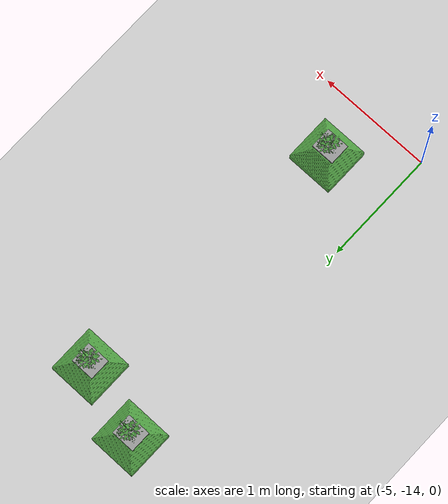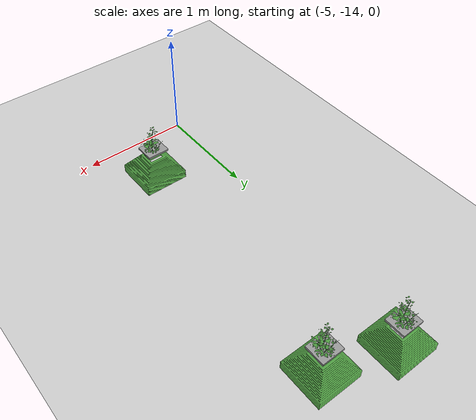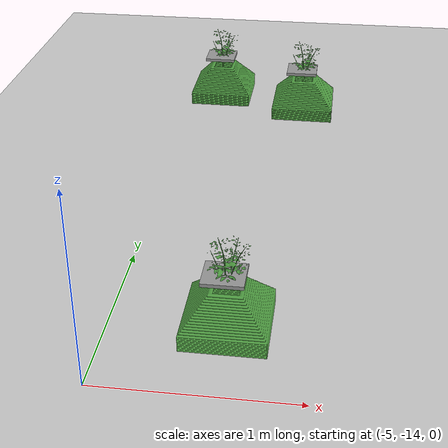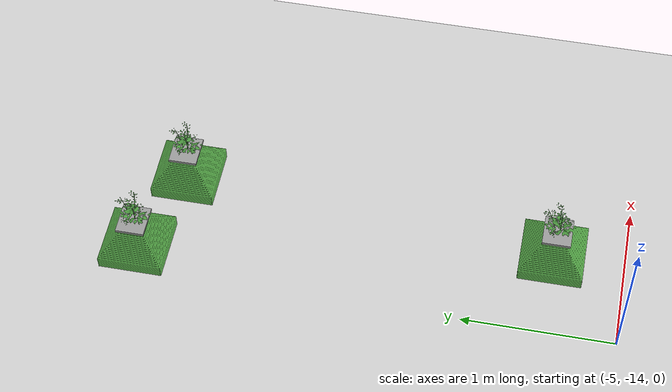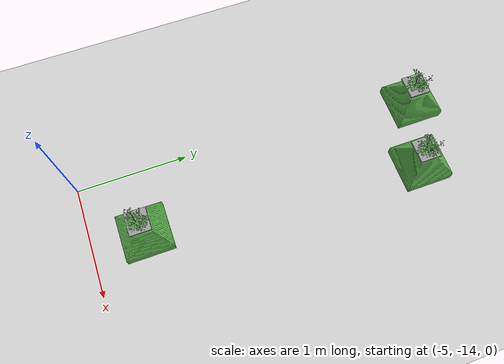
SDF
<sdf version="1.6">
 <world name="default">
  <model name="ground_plane">
   <static>1</static>
   <link name="link">
    <collision name="collision">
     <geometry><plane><normal>0 0 1</normal><size>100 100</size></plane></geometry>
     <surface><friction><ode><mu>100</mu><mu2>50</mu2></ode></friction></surface>
    </collision>
    <visual name="visual">
     <cast_shadows>0</cast_shadows>
     <geometry><plane><normal>0 0 1</normal><size>100 100</size></plane></geometry>
     <material>
      <script><uri>file://media/materials/scripts/gazebo.material</uri><name>Gazebo/Grey</name></script>
     </material>
    </visual>
   </link>
  </model>
  <model name="plant_40">
   <link name="link_0">
    <inertial>
     <mass>1</mass>
     <inertia>
      <ixx>0.0134051</ixx>
      <ixy>0</ixy>
      <ixz>0</ixz>
      <iyy>0.0134051</iyy>
      <iyz>0</iyz>
      <izz>0.0254102</izz>
     </inertia>
    </inertial>
    <gravity>0</gravity>
    <visual name="visual">
     <geometry><mesh><uri>model://square_pot/pot.stl</uri><scale>0.033 0.033 0.02</scale></mesh></geometry>
     <material>
      <lighting>1</lighting>
      <script><uri>file://media/materials/scripts/gazebo.material</uri><name>Gazebo/Grass</name></script>
      <ambient>0.3 0.3 0.3 1</ambient>
      <diffuse>0.7 0.7 0.7 1</diffuse>
      <specular>0.01 0.01 0.01 1</specular>
      <emissive>0 0 0 1</emissive>
      <shader type="vertex"><normal_map>__default__</normal_map></shader>
     </material>
    </visual>
    <collision name="collision">
     <pose>0 0 0.25 0 -0 0</pose>
     <geometry><box><size>0.4 0.4 0.4</size></box></geometry>
     <surface>
      <friction>
       <ode><mu>1</mu><mu2>1</mu2><fdir1>0 0 0</fdir1><slip1>0</slip1><slip2>0</slip2></ode>
       <torsional>
        <coefficient>1</coefficient>
        <patch_radius>0</patch_radius>
        <surface_radius>0</surface_radius>
        <use_patch_radius>1</use_patch_radius>
        <ode><slip>0</slip></ode>
       </torsional>
      </friction>
      <bounce><restitution_coefficient>0</restitution_coefficient><threshold>1e+06</threshold></bounce>
      <contact>
       <collide_without_contact>1</collide_without_contact>
       <collide_without_contact_bitmask>1</collide_without_contact_bitmask>
       <collide_bitmask>1</collide_bitmask>
       <ode>
        <soft_cfm>0</soft_cfm>
        <soft_erp>0.2</soft_erp>
        <kp>1e+13</kp>
        <kd>1</kd>
        <max_vel>0.01</max_vel>
        <min_depth>0</min_depth>
       </ode>
       <bullet>
        <split_impulse>1</split_impulse>
        <split_impulse_penetration_threshold>-0.01</split_impulse_penetration_threshold>
        <soft_cfm>0</soft_cfm>
        <soft_erp>0.2</soft_erp>
        <kp>1e+13</kp>
        <kd>1</kd>
       </bullet>
      </contact>
     </surface>
    </collision>
   </link>
   <link name="link_0_0">
    <pose>-0.011441 -0.008338 0.308474 0 -0 0</pose>
    <inertial>
     <mass>0.000736153</mass>
     <inertia>
      <ixx>2.11165e-06</ixx>
      <ixy>0</ixy>
      <ixz>0</ixz>
      <iyy>2.64382e-06</iyy>
      <iyz>0</iyz>
      <izz>4.70976e-06</izz>
     </inertia>
    </inertial>
    <visual name="visual">
     <geometry><box><size>0.206678 0.18452 0.019291</size></box></geometry>
     <material>
      <lighting>1</lighting>
      <script><uri>file://media/materials/scripts/gazebo.material</uri><name>Gazebo/Grey</name></script>
      <ambient>0.3 0.3 0.3 1</ambient>
      <diffuse>0.7 0.7 0.7 1</diffuse>
      <specular>0.01 0.01 0.01 1</specular>
      <emissive>0 0 0 1</emissive>
     </material>
    </visual>
    <collision name="collision">
     <geometry><box><size>0.206678 0.18452 0.019291</size></box></geometry>
     <surface>
      <friction>
       <ode><mu>1</mu><mu2>1</mu2><fdir1>0 0 0</fdir1><slip1>0</slip1><slip2>0</slip2></ode>
       <torsional>
        <coefficient>1</coefficient>
        <patch_radius>0</patch_radius>
        <surface_radius>0</surface_radius>
        <use_patch_radius>1</use_patch_radius>
        <ode><slip>0</slip></ode>
       </torsional>
      </friction>
      <bounce><restitution_coefficient>0</restitution_coefficient><threshold>1e+06</threshold></bounce>
      <contact>
       <collide_without_contact>0</collide_without_contact>
       <collide_without_contact_bitmask>1</collide_without_contact_bitmask>
       <collide_bitmask>1</collide_bitmask>
       <ode>
        <soft_cfm>0</soft_cfm>
        <soft_erp>0.2</soft_erp>
        <kp>1e+13</kp>
        <kd>1</kd>
        <max_vel>0.01</max_vel>
        <min_depth>0</min_depth>
       </ode>
       <bullet>
        <split_impulse>1</split_impulse>
        <split_impulse_penetration_threshold>-0.01</split_impulse_penetration_threshold>
        <soft_cfm>0</soft_cfm>
        <soft_erp>0.2</soft_erp>
        <kp>1e+13</kp>
        <kd>1</kd>
       </bullet>
      </contact>
     </surface>
    </collision>
   </link>
   <static>1</static>
   <pose>-4.41898 -13.526 0 0 -0 0</pose>
  </model>
  <model name="plant_47">
   <link name="link_0">
    <inertial>
     <mass>1</mass>
     <inertia>
      <ixx>0.0134051</ixx>
      <ixy>0</ixy>
      <ixz>0</ixz>
      <iyy>0.0134051</iyy>
      <iyz>0</iyz>
      <izz>0.0254102</izz>
     </inertia>
    </inertial>
    <gravity>0</gravity>
    <visual name="visual">
     <geometry><mesh><uri>model://square_pot/pot.stl</uri><scale>0.033 0.033 0.02</scale></mesh></geometry>
     <material>
      <lighting>1</lighting>
      <script><uri>file://media/materials/scripts/gazebo.material</uri><name>Gazebo/Grass</name></script>
      <ambient>0.3 0.3 0.3 1</ambient>
      <diffuse>0.7 0.7 0.7 1</diffuse>
      <specular>0.01 0.01 0.01 1</specular>
      <emissive>0 0 0 1</emissive>
      <shader type="vertex"><normal_map>__default__</normal_map></shader>
     </material>
    </visual>
    <collision name="collision">
     <pose>0 0 0.25 0 -0 0</pose>
     <geometry><box><size>0.4 0.4 0.4</size></box></geometry>
     <surface>
      <friction>
       <ode><mu>1</mu><mu2>1</mu2><fdir1>0 0 0</fdir1><slip1>0</slip1><slip2>0</slip2></ode>
       <torsional>
        <coefficient>1</coefficient>
        <patch_radius>0</patch_radius>
        <surface_radius>0</surface_radius>
        <use_patch_radius>1</use_patch_radius>
        <ode><slip>0</slip></ode>
       </torsional>
      </friction>
      <bounce><restitution_coefficient>0</restitution_coefficient><threshold>1e+06</threshold></bounce>
      <contact>
       <collide_without_contact>1</collide_without_contact>
       <collide_without_contact_bitmask>1</collide_without_contact_bitmask>
       <collide_bitmask>1</collide_bitmask>
       <ode>
        <soft_cfm>0</soft_cfm>
        <soft_erp>0.2</soft_erp>
        <kp>1e+13</kp>
        <kd>1</kd>
        <max_vel>0.01</max_vel>
        <min_depth>0</min_depth>
       </ode>
       <bullet>
        <split_impulse>1</split_impulse>
        <split_impulse_penetration_threshold>-0.01</split_impulse_penetration_threshold>
        <soft_cfm>0</soft_cfm>
        <soft_erp>0.2</soft_erp>
        <kp>1e+13</kp>
        <kd>1</kd>
       </bullet>
      </contact>
     </surface>
    </collision>
   </link>
   <link name="link_0_0">
    <pose>-0.011441 -0.008338 0.308474 0 -0 0</pose>
    <inertial>
     <mass>0.000736153</mass>
     <inertia>
      <ixx>2.11165e-06</ixx>
      <ixy>0</ixy>
      <ixz>0</ixz>
      <iyy>2.64382e-06</iyy>
      <iyz>0</iyz>
      <izz>4.70976e-06</izz>
     </inertia>
    </inertial>
    <visual name="visual">
     <geometry><box><size>0.206678 0.18452 0.019291</size></box></geometry>
     <material>
      <lighting>1</lighting>
      <script><uri>file://media/materials/scripts/gazebo.material</uri><name>Gazebo/Grey</name></script>
      <ambient>0.3 0.3 0.3 1</ambient>
      <diffuse>0.7 0.7 0.7 1</diffuse>
      <specular>0.01 0.01 0.01 1</specular>
      <emissive>0 0 0 1</emissive>
     </material>
    </visual>
    <collision name="collision">
     <geometry><box><size>0.206678 0.18452 0.019291</size></box></geometry>
     <surface>
      <friction>
       <ode><mu>1</mu><mu2>1</mu2><fdir1>0 0 0</fdir1><slip1>0</slip1><slip2>0</slip2></ode>
       <torsional>
        <coefficient>1</coefficient>
        <patch_radius>0</patch_radius>
        <surface_radius>0</surface_radius>
        <use_patch_radius>1</use_patch_radius>
        <ode><slip>0</slip></ode>
       </torsional>
      </friction>
      <bounce><restitution_coefficient>0</restitution_coefficient><threshold>1e+06</threshold></bounce>
      <contact>
       <collide_without_contact>0</collide_without_contact>
       <collide_without_contact_bitmask>1</collide_without_contact_bitmask>
       <collide_bitmask>1</collide_bitmask>
       <ode>
        <soft_cfm>0</soft_cfm>
        <soft_erp>0.2</soft_erp>
        <kp>1e+13</kp>
        <kd>1</kd>
        <max_vel>0.01</max_vel>
        <min_depth>0</min_depth>
       </ode>
       <bullet>
        <split_impulse>1</split_impulse>
        <split_impulse_penetration_threshold>-0.01</split_impulse_penetration_threshold>
        <soft_cfm>0</soft_cfm>
        <soft_erp>0.2</soft_erp>
        <kp>1e+13</kp>
        <kd>1</kd>
       </bullet>
      </contact>
     </surface>
    </collision>
   </link>
   <static>1</static>
   <pose>-4.82339 -10.8347 0 0 -0 0</pose>
  </model>
  <model name="plant_48">
   <link name="link_0">
    <inertial>
     <mass>1</mass>
     <inertia>
      <ixx>0.0134051</ixx>
      <ixy>0</ixy>
      <ixz>0</ixz>
      <iyy>0.0134051</iyy>
      <iyz>0</iyz>
      <izz>0.0254102</izz>
     </inertia>
    </inertial>
    <gravity>0</gravity>
    <visual name="visual">
     <geometry><mesh><uri>model://square_pot/pot.stl</uri><scale>0.033 0.033 0.02</scale></mesh></geometry>
     <material>
      <lighting>1</lighting>
      <script><uri>file://media/materials/scripts/gazebo.material</uri><name>Gazebo/Grass</name></script>
      <ambient>0.3 0.3 0.3 1</ambient>
      <diffuse>0.7 0.7 0.7 1</diffuse>
      <specular>0.01 0.01 0.01 1</specular>
      <emissive>0 0 0 1</emissive>
      <shader type="vertex"><normal_map>__default__</normal_map></shader>
     </material>
    </visual>
    <collision name="collision">
     <pose>0 0 0.25 0 -0 0</pose>
     <geometry><box><size>0.4 0.4 0.4</size></box></geometry>
     <surface>
      <friction>
       <ode><mu>1</mu><mu2>1</mu2><fdir1>0 0 0</fdir1><slip1>0</slip1><slip2>0</slip2></ode>
       <torsional>
        <coefficient>1</coefficient>
        <patch_radius>0</patch_radius>
        <surface_radius>0</surface_radius>
        <use_patch_radius>1</use_patch_radius>
        <ode><slip>0</slip></ode>
       </torsional>
      </friction>
      <bounce><restitution_coefficient>0</restitution_coefficient><threshold>1e+06</threshold></bounce>
      <contact>
       <collide_without_contact>1</collide_without_contact>
       <collide_without_contact_bitmask>1</collide_without_contact_bitmask>
       <collide_bitmask>1</collide_bitmask>
       <ode>
        <soft_cfm>0</soft_cfm>
        <soft_erp>0.2</soft_erp>
        <kp>1e+13</kp>
        <kd>1</kd>
        <max_vel>0.01</max_vel>
        <min_depth>0</min_depth>
       </ode>
       <bullet>
        <split_impulse>1</split_impulse>
        <split_impulse_penetration_threshold>-0.01</split_impulse_penetration_threshold>
        <soft_cfm>0</soft_cfm>
        <soft_erp>0.2</soft_erp>
        <kp>1e+13</kp>
        <kd>1</kd>
       </bullet>
      </contact>
     </surface>
    </collision>
   </link>
   <link name="link_0_0">
    <pose>-0.011441 -0.008338 0.308474 0 -0 0</pose>
    <inertial>
     <mass>0.000736153</mass>
     <inertia>
      <ixx>2.11165e-06</ixx>
      <ixy>0</ixy>
      <ixz>0</ixz>
      <iyy>2.64382e-06</iyy>
      <iyz>0</iyz>
      <izz>4.70976e-06</izz>
     </inertia>
    </inertial>
    <visual name="visual">
     <geometry><box><size>0.206678 0.18452 0.019291</size></box></geometry>
     <material>
      <lighting>1</lighting>
      <script><uri>file://media/materials/scripts/gazebo.material</uri><name>Gazebo/Grey</name></script>
      <ambient>0.3 0.3 0.3 1</ambient>
      <diffuse>0.7 0.7 0.7 1</diffuse>
      <specular>0.01 0.01 0.01 1</specular>
      <emissive>0 0 0 1</emissive>
     </material>
    </visual>
    <collision name="collision">
     <geometry><box><size>0.206678 0.18452 0.019291</size></box></geometry>
     <surface>
      <friction>
       <ode><mu>1</mu><mu2>1</mu2><fdir1>0 0 0</fdir1><slip1>0</slip1><slip2>0</slip2></ode>
       <torsional>
        <coefficient>1</coefficient>
        <patch_radius>0</patch_radius>
        <surface_radius>0</surface_radius>
        <use_patch_radius>1</use_patch_radius>
        <ode><slip>0</slip></ode>
       </torsional>
      </friction>
      <bounce><restitution_coefficient>0</restitution_coefficient><threshold>1e+06</threshold></bounce>
      <contact>
       <collide_without_contact>0</collide_without_contact>
       <collide_without_contact_bitmask>1</collide_without_contact_bitmask>
       <collide_bitmask>1</collide_bitmask>
       <ode>
        <soft_cfm>0</soft_cfm>
        <soft_erp>0.2</soft_erp>
        <kp>1e+13</kp>
        <kd>1</kd>
        <max_vel>0.01</max_vel>
        <min_depth>0</min_depth>
       </ode>
       <bullet>
        <split_impulse>1</split_impulse>
        <split_impulse_penetration_threshold>-0.01</split_impulse_penetration_threshold>
        <soft_cfm>0</soft_cfm>
        <soft_erp>0.2</soft_erp>
        <kp>1e+13</kp>
        <kd>1</kd>
       </bullet>
      </contact>
     </surface>
    </collision>
   </link>
   <static>1</static>
   <pose>-4.21648 -11.0274 0 0 -0 0</pose>
  </model>
 </world>
</sdf>
